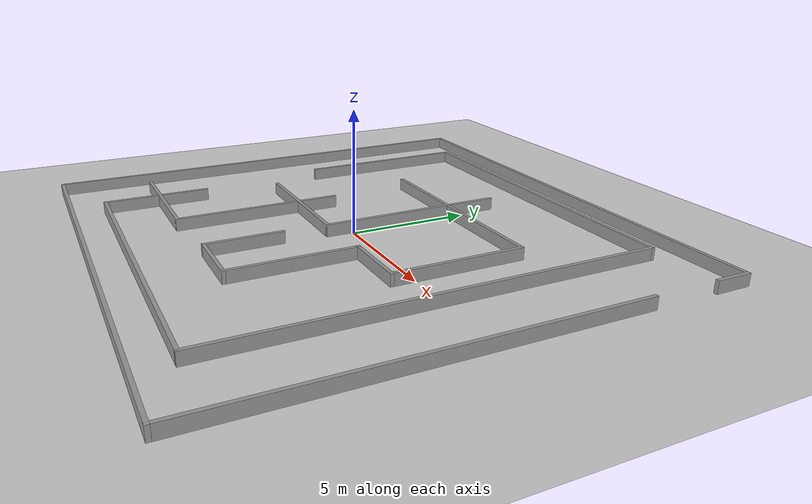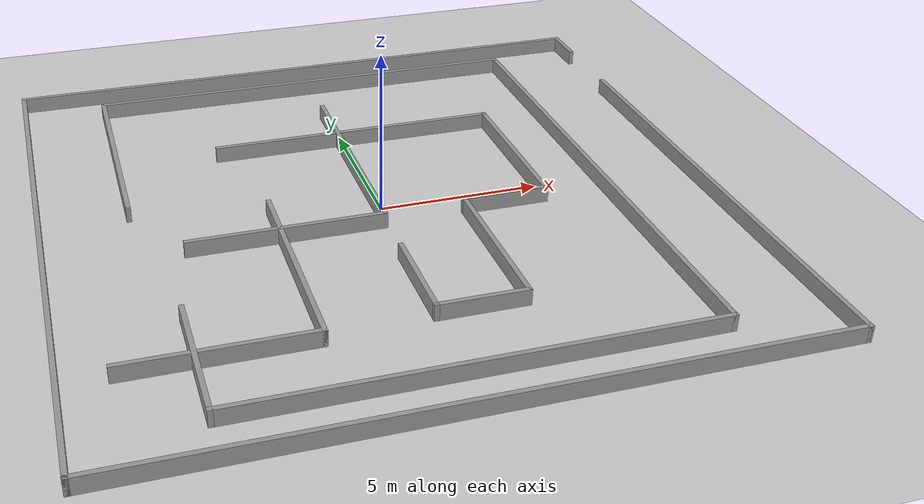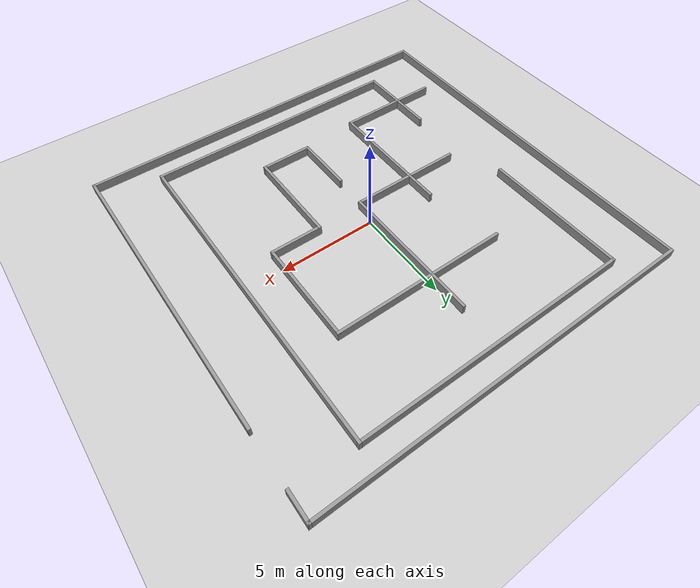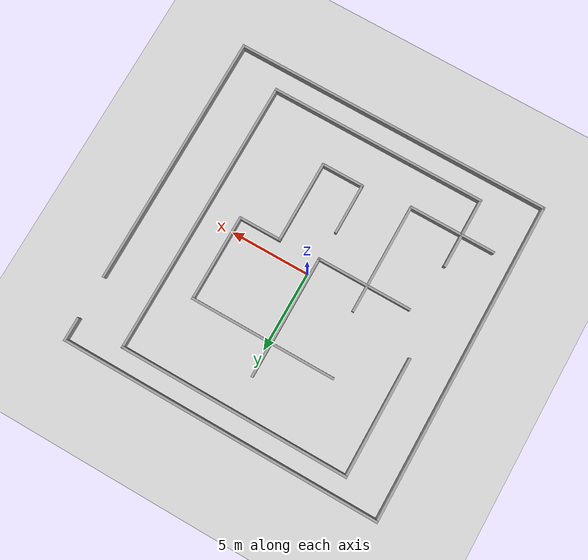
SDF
<sdf version="1.4">
  <world name="default">

    <scene>
      <ambient>0.4 0.4 0.4 1</ambient>
      <background>0.7 0.7 0.7 1</background>
      <shadows>true</shadows>
    </scene>

    <!-- A global light source -->
    <include>
      <uri>model://sun</uri>
    </include>

    <!-- A ground plane -->
    <include>
      <uri>model://ground_plane</uri>
    </include>

    <!-- My Maze -->
    <include>
      <uri>model://my_maze2</uri>
    </include>

    <physics type="ode">
      <real_time_update_rate>1000.0</real_time_update_rate>
      <max_step_size>0.001</max_step_size>
      <real_time_factor>1</real_time_factor>
      <ode>
        <solver>
          <type>quick</type>
          <iters>150</iters>
          <precon_iters>0</precon_iters>
          <sor>1.400000</sor>
          <use_dynamic_moi_rescaling>1</use_dynamic_moi_rescaling>
        </solver>
        <constraints>
          <cfm>0.00001</cfm>
          <erp>0.2</erp>
          <contact_max_correcting_vel>2000.000000</contact_max_correcting_vel>
          <contact_surface_layer>0.01000</contact_surface_layer>
        </constraints>
      </ode>
    </physics>
  </world>

</sdf>

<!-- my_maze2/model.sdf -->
<sdf version='1.7'>
  <model name='my_maze2'>
    <pose>0 0 0 0 -0 0</pose>
    <link name='Wall_15'>
      <collision name='Wall_15_Collision'>
        <geometry>
          <box>
            <size>20.15 0.15 0.5</size>
          </box>
        </geometry>
        <pose>0 0 0.25 0 -0 0</pose>
      </collision>
      <visual name='Wall_15_Visual'>
        <pose>0 0 0.25 0 -0 0</pose>
        <geometry>
          <box>
            <size>20.15 0.15 0.5</size>
          </box>
        </geometry>
        <material>
          <script>
            <uri>file://media/materials/scripts/gazebo.material</uri>
            <name>Gazebo/Grey</name>
          </script>
          <ambient>1 1 1 1</ambient>
        </material>
        <meta>
          <layer>0</layer>
        </meta>
      </visual>
      <pose>0 10 0 0 -0 3.14159</pose>
    </link>
    <link name='Wall_17'>
      <collision name='Wall_17_Collision'>
        <geometry>
          <box>
            <size>20.15 0.15 0.5</size>
          </box>
        </geometry>
        <pose>0 0 0.25 0 -0 0</pose>
      </collision>
      <visual name='Wall_17_Visual'>
        <pose>0 0 0.25 0 -0 0</pose>
        <geometry>
          <box>
            <size>20.15 0.15 0.5</size>
          </box>
        </geometry>
        <material>
          <script>
            <uri>file://media/materials/scripts/gazebo.material</uri>
            <name>Gazebo/Grey</name>
          </script>
          <ambient>1 1 1 1</ambient>
        </material>
        <meta>
          <layer>0</layer>
        </meta>
      </visual>
      <pose>-10 0 0 0 -0 1.5708</pose>
    </link>
    <link name='Wall_21'>
      <collision name='Wall_21_Collision'>
        <geometry>
          <box>
            <size>20.15 0.15 0.5</size>
          </box>
        </geometry>
        <pose>0 0 0.25 0 -0 0</pose>
      </collision>
      <visual name='Wall_21_Visual'>
        <pose>0 0 0.25 0 -0 0</pose>
        <geometry>
          <box>
            <size>20.15 0.15 0.5</size>
          </box>
        </geometry>
        <material>
          <script>
            <uri>file://media/materials/scripts/gazebo.material</uri>
            <name>Gazebo/Grey</name>
          </script>
          <ambient>1 1 1 1</ambient>
        </material>
        <meta>
          <layer>0</layer>
        </meta>
      </visual>
      <pose>0 -10 0 0 -0 0</pose>
    </link>
    <link name='Wall_23'>
      <collision name='Wall_23_Collision'>
        <geometry>
          <box>
            <size>1.5 0.15 0.5</size>
          </box>
        </geometry>
        <pose>0 0 0.25 0 -0 0</pose>
      </collision>
      <visual name='Wall_23_Visual'>
        <pose>0 0 0.25 0 -0 0</pose>
        <geometry>
          <box>
            <size>1.5 0.15 0.5</size>
          </box>
        </geometry>
        <material>
          <script>
            <uri>file://media/materials/scripts/gazebo.material</uri>
            <name>Gazebo/Grey</name>
          </script>
          <ambient>1 1 1 1</ambient>
        </material>
        <meta>
          <layer>0</layer>
        </meta>
      </visual>
      <pose>10 9.325 0 0 -0 -1.5708</pose>
    </link>
    <link name='Wall_25'>
      <collision name='Wall_25_Collision'>
        <geometry>
          <box>
            <size>4.5 0.15 0.5</size>
          </box>
        </geometry>
        <pose>0 0 0.25 0 -0 0</pose>
      </collision>
      <visual name='Wall_25_Visual'>
        <pose>0 0 0.25 0 -0 0</pose>
        <geometry>
          <box>
            <size>4.5 0.15 0.5</size>
          </box>
        </geometry>
        <material>
          <script>
            <uri>file://media/materials/scripts/gazebo.material</uri>
            <name>Gazebo/Grey</name>
          </script>
          <ambient>1 1 1 1</ambient>
        </material>
        <meta>
          <layer>0</layer>
        </meta>
      </visual>
      <pose>-6.634 -6.424 0 0 -0 -1.5708</pose>
    </link>
    <link name='Wall_27'>
      <collision name='Wall_27_Collision'>
        <geometry>
          <box>
            <size>5.5 0.15 0.5</size>
          </box>
        </geometry>
        <pose>0 0 0.25 0 -0 0</pose>
      </collision>
      <visual name='Wall_27_Visual'>
        <pose>0 0 0.25 0 -0 0</pose>
        <geometry>
          <box>
            <size>5.5 0.15 0.5</size>
          </box>
        </geometry>
        <material>
          <script>
            <uri>file://media/materials/scripts/gazebo.material</uri>
            <name>Gazebo/Grey</name>
          </script>
          <ambient>1 1 1 1</ambient>
        </material>
        <meta>
          <layer>0</layer>
        </meta>
      </visual>
      <pose>-5.995 -6.285 0 0 -0 0</pose>
    </link>
    <link name='Wall_28'>
      <collision name='Wall_28_Collision'>
        <geometry>
          <box>
            <size>7 0.15 0.5</size>
          </box>
        </geometry>
        <pose>0 0 0.25 0 -0 0</pose>
      </collision>
      <visual name='Wall_28_Visual'>
        <pose>0 0 0.25 0 -0 0</pose>
        <geometry>
          <box>
            <size>7 0.15 0.5</size>
          </box>
        </geometry>
        <material>
          <script>
            <uri>file://media/materials/scripts/gazebo.material</uri>
            <name>Gazebo/Grey</name>
          </script>
          <ambient>1 1 1 1</ambient>
        </material>
        <meta>
          <layer>0</layer>
        </meta>
      </visual>
      <pose>-3.32 -2.86 0 0 -0 1.5708</pose>
    </link>
    <link name='Wall_30'>
      <collision name='Wall_30_Collision'>
        <geometry>
          <box>
            <size>6 0.15 0.5</size>
          </box>
        </geometry>
        <pose>0 0 0.25 0 -0 0</pose>
      </collision>
      <visual name='Wall_30_Visual'>
        <pose>0 0 0.25 0 -0 0</pose>
        <geometry>
          <box>
            <size>6 0.15 0.5</size>
          </box>
        </geometry>
        <material>
          <script>
            <uri>file://media/materials/scripts/gazebo.material</uri>
            <name>Gazebo/Grey</name>
          </script>
          <ambient>1 1 1 1</ambient>
        </material>
        <meta>
          <layer>0</layer>
        </meta>
      </visual>
      <pose>-3.104 -1.057 0 0 -0 0</pose>
    </link>
    <link name='Wall_32'>
      <collision name='Wall_32_Collision'>
        <geometry>
          <box>
            <size>7.75 0.15 0.5</size>
          </box>
        </geometry>
        <pose>0 0 0.25 0 -0 0</pose>
      </collision>
      <visual name='Wall_32_Visual'>
        <pose>0 0 0.25 0 -0 0</pose>
        <geometry>
          <box>
            <size>7.75 0.15 0.5</size>
          </box>
        </geometry>
        <material>
          <script>
            <uri>file://media/materials/scripts/gazebo.material</uri>
            <name>Gazebo/Grey</name>
          </script>
          <ambient>1 1 1 1</ambient>
        </material>
        <meta>
          <layer>0</layer>
        </meta>
      </visual>
      <pose>-0.179 2.743 0 0 -0 1.5708</pose>
    </link>
    <link name='Wall_34'>
      <collision name='Wall_34_Collision'>
        <geometry>
          <box>
            <size>9.25 0.15 0.5</size>
          </box>
        </geometry>
        <pose>0 0 0.25 0 -0 0</pose>
      </collision>
      <visual name='Wall_34_Visual'>
        <pose>0 0 0.25 0 -0 0</pose>
        <geometry>
          <box>
            <size>9.25 0.15 0.5</size>
          </box>
        </geometry>
        <material>
          <script>
            <uri>file://media/materials/scripts/gazebo.material</uri>
            <name>Gazebo/Grey</name>
          </script>
          <ambient>1 1 1 1</ambient>
        </material>
        <meta>
          <layer>0</layer>
        </meta>
      </visual>
      <pose>0.392 4.447 0 0 -0 0</pose>
    </link>
    <link name='Wall_36'>
      <collision name='Wall_36_Collision'>
        <geometry>
          <box>
            <size>5.5 0.15 0.5</size>
          </box>
        </geometry>
        <pose>0 0 0.25 0 -0 0</pose>
      </collision>
      <visual name='Wall_36_Visual'>
        <pose>0 0 0.25 0 -0 0</pose>
        <geometry>
          <box>
            <size>5.5 0.15 0.5</size>
          </box>
        </geometry>
        <material>
          <script>
            <uri>file://media/materials/scripts/gazebo.material</uri>
            <name>Gazebo/Grey</name>
          </script>
          <ambient>1 1 1 1</ambient>
        </material>
        <meta>
          <layer>0</layer>
        </meta>
      </visual>
      <pose>4.942 1.772 0 0 -0 -1.5708</pose>
    </link>
    <link name='Wall_37'>
      <collision name='Wall_37_Collision'>
        <geometry>
          <box>
            <size>2.75 0.15 0.5</size>
          </box>
        </geometry>
        <pose>0 0 0.25 0 -0 0</pose>
      </collision>
      <visual name='Wall_37_Visual'>
        <pose>0 0 0.25 0 -0 0</pose>
        <geometry>
          <box>
            <size>2.75 0.15 0.5</size>
          </box>
        </geometry>
        <material>
          <script>
            <uri>file://media/materials/scripts/gazebo.material</uri>
            <name>Gazebo/Grey</name>
          </script>
          <ambient>1 1 1 1</ambient>
        </material>
        <meta>
          <layer>0</layer>
        </meta>
      </visual>
      <pose>3.642 -0.903 0 0 -0 3.14159</pose>
    </link>
    <link name='Wall_38'>
      <collision name='Wall_38_Collision'>
        <geometry>
          <box>
            <size>5.25 0.15 0.5</size>
          </box>
        </geometry>
        <pose>0 0 0.25 0 -0 0</pose>
      </collision>
      <visual name='Wall_38_Visual'>
        <pose>0 0 0.25 0 -0 0</pose>
        <geometry>
          <box>
            <size>5.25 0.15 0.5</size>
          </box>
        </geometry>
        <material>
          <script>
            <uri>file://media/materials/scripts/gazebo.material</uri>
            <name>Gazebo/Grey</name>
          </script>
          <ambient>1 1 1 1</ambient>
        </material>
        <meta>
          <layer>0</layer>
        </meta>
      </visual>
      <pose>2.342 -3.453 0 0 -0 -1.5708</pose>
    </link>
    <link name='Wall_39'>
      <collision name='Wall_39_Collision'>
        <geometry>
          <box>
            <size>2.75 0.15 0.5</size>
          </box>
        </geometry>
        <pose>0 0 0.25 0 -0 0</pose>
      </collision>
      <visual name='Wall_39_Visual'>
        <pose>0 0 0.25 0 -0 0</pose>
        <geometry>
          <box>
            <size>2.75 0.15 0.5</size>
          </box>
        </geometry>
        <material>
          <script>
            <uri>file://media/materials/scripts/gazebo.material</uri>
            <name>Gazebo/Grey</name>
          </script>
          <ambient>1 1 1 1</ambient>
        </material>
        <meta>
          <layer>0</layer>
        </meta>
      </visual>
      <pose>1.042 -6.003 0 0 -0 3.14159</pose>
    </link>
    <link name='Wall_40'>
      <collision name='Wall_40_Collision'>
        <geometry>
          <box>
            <size>3.25 0.15 0.5</size>
          </box>
        </geometry>
        <pose>0 0 0.25 0 -0 0</pose>
      </collision>
      <visual name='Wall_40_Visual'>
        <pose>0 0 0.25 0 -0 0</pose>
        <geometry>
          <box>
            <size>3.25 0.15 0.5</size>
          </box>
        </geometry>
        <material>
          <script>
            <uri>file://media/materials/scripts/gazebo.material</uri>
            <name>Gazebo/Grey</name>
          </script>
          <ambient>1 1 1 1</ambient>
        </material>
        <meta>
          <layer>0</layer>
        </meta>
      </visual>
      <pose>-0.258 -4.453 0 0 -0 1.5708</pose>
    </link>
    <link name='Wall_42'>
      <collision name='Wall_42_Collision'>
        <geometry>
          <box>
            <size>7.5 0.15 0.5</size>
          </box>
        </geometry>
        <pose>0 0 0.25 0 -0 0</pose>
      </collision>
      <visual name='Wall_42_Visual'>
        <pose>0 0 0.25 0 -0 0</pose>
        <geometry>
          <box>
            <size>7.5 0.15 0.5</size>
          </box>
        </geometry>
        <material>
          <script>
            <uri>file://media/materials/scripts/gazebo.material</uri>
            <name>Gazebo/Grey</name>
          </script>
          <ambient>1 1 1 1</ambient>
        </material>
        <meta>
          <layer>0</layer>
        </meta>
      </visual>
      <pose>-7.384 5.076 0 0 -0 -1.5708</pose>
    </link>
    <link name='Wall_44'>
      <collision name='Wall_44_Collision'>
        <geometry>
          <box>
            <size>13.75 0.15 0.5</size>
          </box>
        </geometry>
        <pose>0 0 0.25 0 -0 0</pose>
      </collision>
      <visual name='Wall_44_Visual'>
        <pose>0 0 0.25 0 -0 0</pose>
        <geometry>
          <box>
            <size>13.75 0.15 0.5</size>
          </box>
        </geometry>
        <material>
          <script>
            <uri>file://media/materials/scripts/gazebo.material</uri>
            <name>Gazebo/Grey</name>
          </script>
          <ambient>1 1 1 1</ambient>
        </material>
        <meta>
          <layer>0</layer>
        </meta>
      </visual>
      <pose>0.166 -8.599 0 0 -0 0</pose>
    </link>
    <link name='Wall_45'>
      <collision name='Wall_45_Collision'>
        <geometry>
          <box>
            <size>17.5 0.15 0.5</size>
          </box>
        </geometry>
        <pose>0 0 0.25 0 -0 0</pose>
      </collision>
      <visual name='Wall_45_Visual'>
        <pose>0 0 0.25 0 -0 0</pose>
        <geometry>
          <box>
            <size>17.5 0.15 0.5</size>
          </box>
        </geometry>
        <material>
          <script>
            <uri>file://media/materials/scripts/gazebo.material</uri>
            <name>Gazebo/Grey</name>
          </script>
          <ambient>1 1 1 1</ambient>
        </material>
        <meta>
          <layer>0</layer>
        </meta>
      </visual>
      <pose>6.966 0.076 0 0 -0 1.5708</pose>
    </link>
    <link name='Wall_46'>
      <collision name='Wall_46_Collision'>
        <geometry>
          <box>
            <size>14.5 0.15 0.5</size>
          </box>
        </geometry>
        <pose>0 0 0.25 0 -0 0</pose>
      </collision>
      <visual name='Wall_46_Visual'>
        <pose>0 0 0.25 0 -0 0</pose>
        <geometry>
          <box>
            <size>14.5 0.15 0.5</size>
          </box>
        </geometry>
        <material>
          <script>
            <uri>file://media/materials/scripts/gazebo.material</uri>
            <name>Gazebo/Grey</name>
          </script>
          <ambient>1 1 1 1</ambient>
        </material>
        <meta>
          <layer>0</layer>
        </meta>
      </visual>
      <pose>-0.209 8.751 0 0 -0 3.14159</pose>
    </link>
    <link name='Wall_7'>
      <collision name='Wall_7_Collision'>
        <geometry>
          <box>
            <size>16 0.15 0.5</size>
          </box>
        </geometry>
        <pose>0 0 0.25 0 -0 0</pose>
      </collision>
      <visual name='Wall_7_Visual'>
        <pose>0 0 0.25 0 -0 0</pose>
        <geometry>
          <box>
            <size>16 0.15 0.5</size>
          </box>
        </geometry>
        <material>
          <script>
            <uri>file://media/materials/scripts/gazebo.material</uri>
            <name>Gazebo/Grey</name>
          </script>
          <ambient>1 1 1 1</ambient>
        </material>
        <meta>
          <layer>0</layer>
        </meta>
      </visual>
      <pose>10 -2.075 0 0 -0 -1.5708</pose>
    </link>
    <link name='Wall_9'>
      <collision name='Wall_9_Collision'>
        <geometry>
          <box>
            <size>0.15 0.15 0.5</size>
          </box>
        </geometry>
        <pose>0 0 0.25 0 -0 0</pose>
      </collision>
      <visual name='Wall_9_Visual'>
        <pose>0 0 0.25 0 -0 0</pose>
        <geometry>
          <box>
            <size>0.15 0.15 0.5</size>
          </box>
        </geometry>
        <material>
          <script>
            <uri>file://media/materials/scripts/gazebo.material</uri>
            <name>Gazebo/Grey</name>
          </script>
          <ambient>1 1 1 1</ambient>
        </material>
        <meta>
          <layer>0</layer>
        </meta>
      </visual>
      <pose>10 10 0 0 -0 0</pose>
    </link>
    <static>1</static>
  </model>
</sdf>
